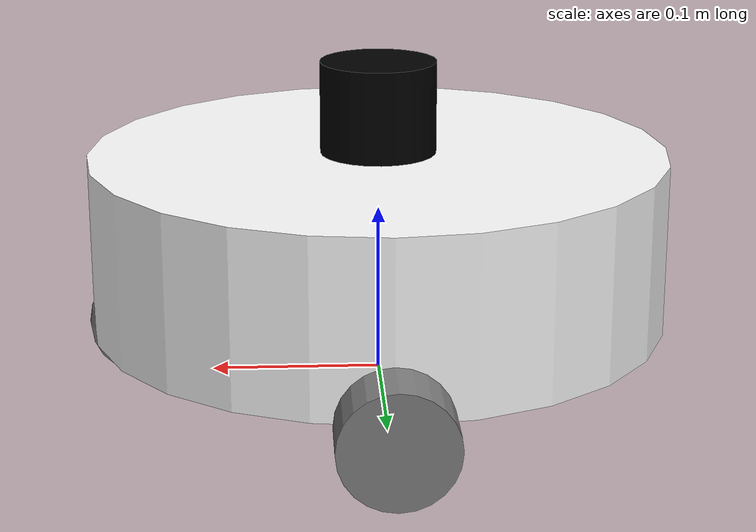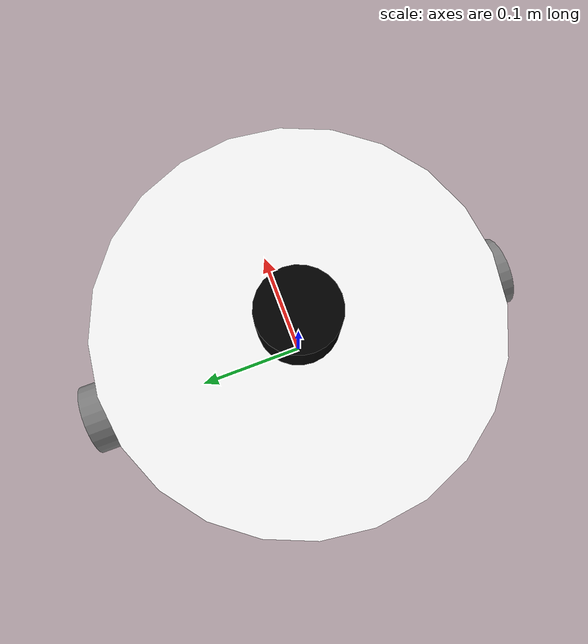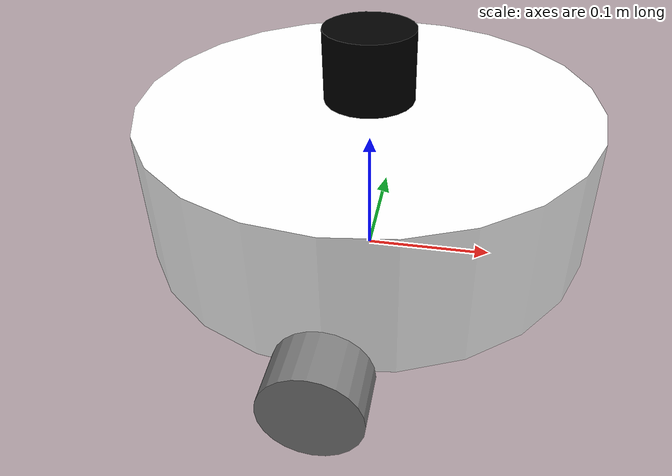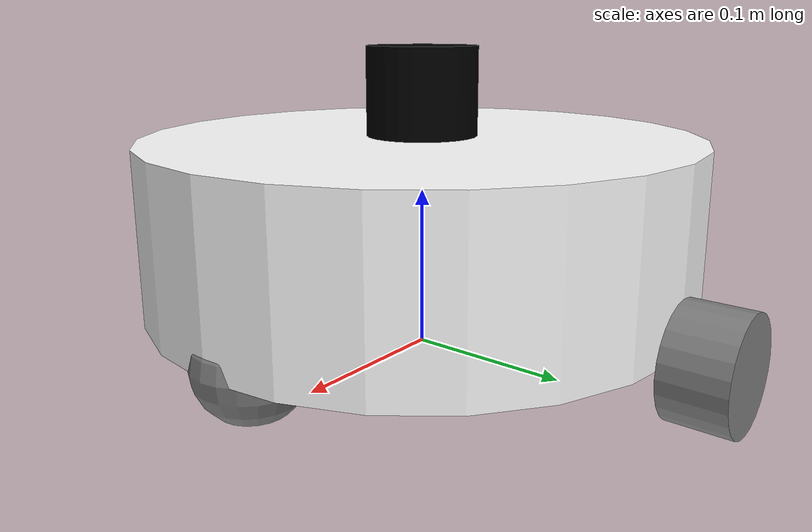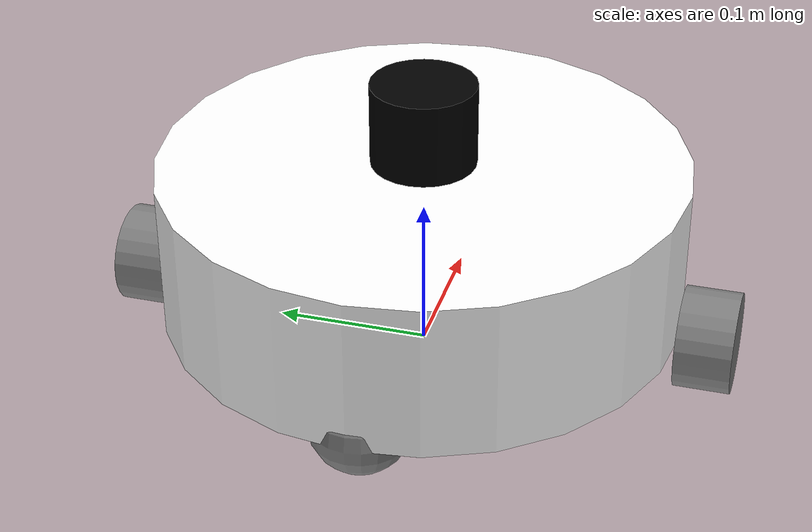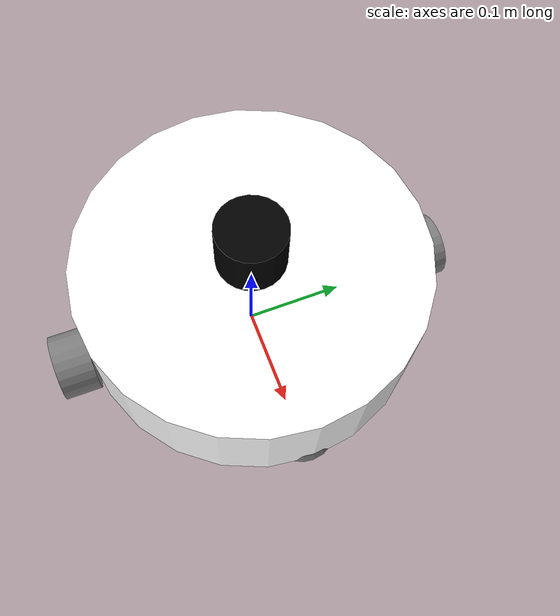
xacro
<?xml version="1.0"?>
<robot xmlns:xacro="http://www.ros.org/wiki/xacro" name="g_bot">

  <xacro:arg name="is_sim" default="false"/>
  <xacro:include filename="robot.core.xacro" />
  <xacro:include filename="lidar.xacro" />
  <xacro:include filename="imu.xacro" />

</robot>

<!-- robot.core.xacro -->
<robot name="RobotSystem" xmlns:xacro="http://www.ros.org/wiki/xacro">

  <xacro:include filename="inertial_macros.xacro" />
  <xacro:include filename="robot.gazebo.xacro" />
  <xacro:include filename="robot.ros2_control.xacro" />

  <material name="white">
   <color rgba="1 1 1 1"/>
  </material>
  <material name="green">
   <color rgba="0 1 0 1"/>
  </material>
  <material name="gray">
   <color rgba="0.5 0.5 0.5 1"/>
  </material>

 <link name="base_footprint" />

<link name="base_link">
   <visual>
     <geometry>
       <cylinder radius="0.17" length="0.102"/>
     </geometry>
     <origin xyz="0 0 0" rpy="0 0 0"/>
     <material name="white"/>
   </visual>
   <collision>
     <geometry>
       <cylinder radius="0.17" length="0.102"/>
     </geometry>
     <origin xyz="0 0 0" rpy="0 0 0"/>
   </collision>
   <xacro:cylinder_inertia m="4" r="0.17" l="0.102" o_xyz="0 0 0" o_rpy="0 0 0" />
</link>

<!-- Base link -->
 <joint name="base_link_joint" type="fixed">
   <parent link="base_footprint"/>
   <child link="base_link"/>
   <origin xyz="0 0 0.0835" rpy="0 0 0"/>
</joint>

<link name="caster_wheel">
   <visual>
      <geometry>
        <sphere radius="0.0325"/>
      </geometry>
      <origin xyz="0 0 0" rpy="0 0 0"/>
      <material name="gray"/>
   </visual>
   <collision>
      <geometry>
        <sphere radius="0.0325"/>
      </geometry>
      <origin xyz="0 0 0" rpy="0 0 0"/>
   </collision>
   <xacro:sphere_inertia m="0.2" r="0.0325" o_xyz="0 0 0" o_rpy="0 0 0" />
</link>

<joint name="caster_wheel_joint" type="fixed">
    <parent link="base_link"/>
    <child link="caster_wheel"/>
    <origin xyz="0.14 0 -0.051" rpy="0 0 0"/>
</joint>

<link name="left_wheel">
  <visual>
      <geometry>
          <cylinder radius="0.0325" length="0.036"/>
      </geometry>
      <material name="gray"/>
      <origin xyz="0 0 0" rpy="0 0 0" />
  </visual>
  <collision>
    <geometry>
        <cylinder radius="0.0325" length="0.036"/>
    </geometry>
    <origin xyz="0 0 0" rpy="0 0 0" />
</collision>
<xacro:cylinder_inertia m="1" r="0.0325" l="0.036" o_xyz="0 0 0" o_rpy="0 0 0" />
</link>

<joint name="left_wheel_joint" type="continuous">
  <parent link="base_link"/>
  <child link="left_wheel"/>
  <origin xyz="0 0.188 -0.051" rpy="1.57 0 0" />
  <axis xyz="0 0 -1"/>
</joint>

<link name="right_wheel">
  <visual>
      <geometry>
          <cylinder radius="0.0325" length="0.036"/>
      </geometry>
      <material name="gray"/>
      <origin xyz="0 0 0" rpy="0 0 0" />
  </visual>
  <collision>
    <geometry>
        <cylinder radius="0.0325" length="0.036"/>
    </geometry>
    <origin xyz="0 0 0" rpy="0 0 0" />
</collision>
<xacro:cylinder_inertia m="1" r="0.0325" l="0.036" o_xyz="0 0 0" o_rpy="0 0 0" />
</link>

<joint name="right_wheel_joint" type="continuous">
  <parent link="base_link"/>
  <child link="right_wheel"/>
  <origin xyz="0 -0.188 -0.051" rpy="1.57 0 0" />
  <axis xyz="0 0 -1"/>
</joint>

<link name="caster_wheel_back">
   <visual>
      <geometry>
        <sphere radius="0.0325"/>
      </geometry>
      <origin xyz="0 0 0" rpy="0 0 0"/>
      <material name="gray"/>
   </visual>
   <collision>
      <geometry>
        <sphere radius="0.0325"/>
      </geometry>
      <origin xyz="0 0 0" rpy="0 0 0"/>
   </collision>
   <xacro:sphere_inertia m="0.2" r="0.0325" o_xyz="0 0 0" o_rpy="0 0 0" />
</link>

<joint name="caster_wheel_back_joint" type="fixed">
    <parent link="base_link"/>
    <child link="caster_wheel_back"/>
    <origin xyz="-0.14 0 -0.051" rpy="0 0 0"/>
</joint>

</robot>

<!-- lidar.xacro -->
<robot xmlns:xacro="http://www.ros.org/wiki/xacro" >

    <material name="black">
     <color rgba="0 0 0 1"/>
   </material>

    <joint name="laser_joint" type="fixed">
        <parent link="base_link"/>
        <child link="laser_frame"/>
        <origin xyz="0 0 0.078" rpy="0 0 0"/>
    </joint>

    <link name="laser_frame">
        <visual>
            <origin xyz="0 0 0"/>
            <geometry>
                <cylinder radius="0.034" length="0.054"/>
            </geometry>
            <material name="black"/>
        </visual>
        <collision>
            <geometry>
                <cylinder radius="0.034" length="0.054"/>
            </geometry>
        </collision>
        <xacro:cylinder_inertia m="1" r="0.034" l="0.054" o_xyz="0 0 0" o_rpy="0 0 0" />
    </link>

</robot>

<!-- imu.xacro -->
<robot xmlns:xacro="http://www.ros.org/wiki/xacro" >

    <material name="kok">
     <color rgba="0 0 0 1"/>
   </material>
<!--to imu den fainetai sto display einai sth vasi tou lidar-->
    <joint name="imu_joint" type="fixed">
        <parent link="base_link"/>
        <child link="imu_link"/>
        <origin xyz="0 0 0.051" rpy="0 0 0"/>
        <axis xyz = "0 0 0" />
    </joint>

    <link name="imu_link">
        <visual>
            <origin xyz="0 0 0"/>
            <geometry>
               <box size="0.02 0.015 0.01" />
            </geometry>
            <material name="kok"/>
        </visual>
        <collision>
            <geometry>
               <box size="0.02 0.015 0.01" />
            </geometry>
        </collision>
        <xacro:box_inertia m="0.1" x="0.02" y="0.015" z= "0.01" o_xyz="0.01 0 0.025" o_rpy="0 0 0" />
        m x y z o_xyz o_rpy
    </link>

</robot>
